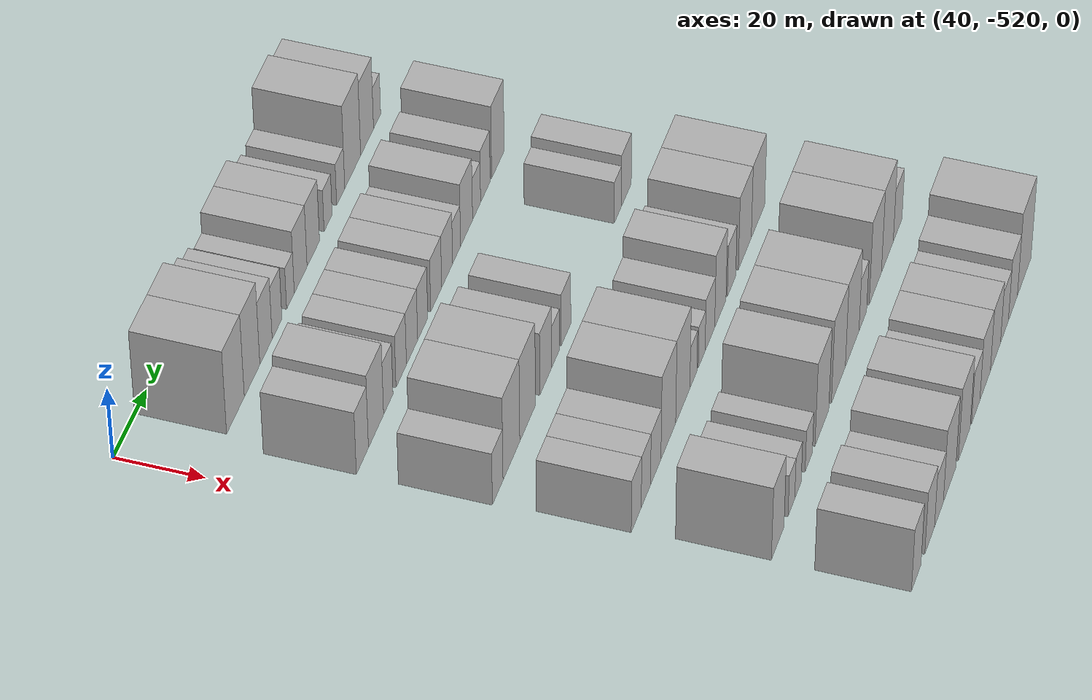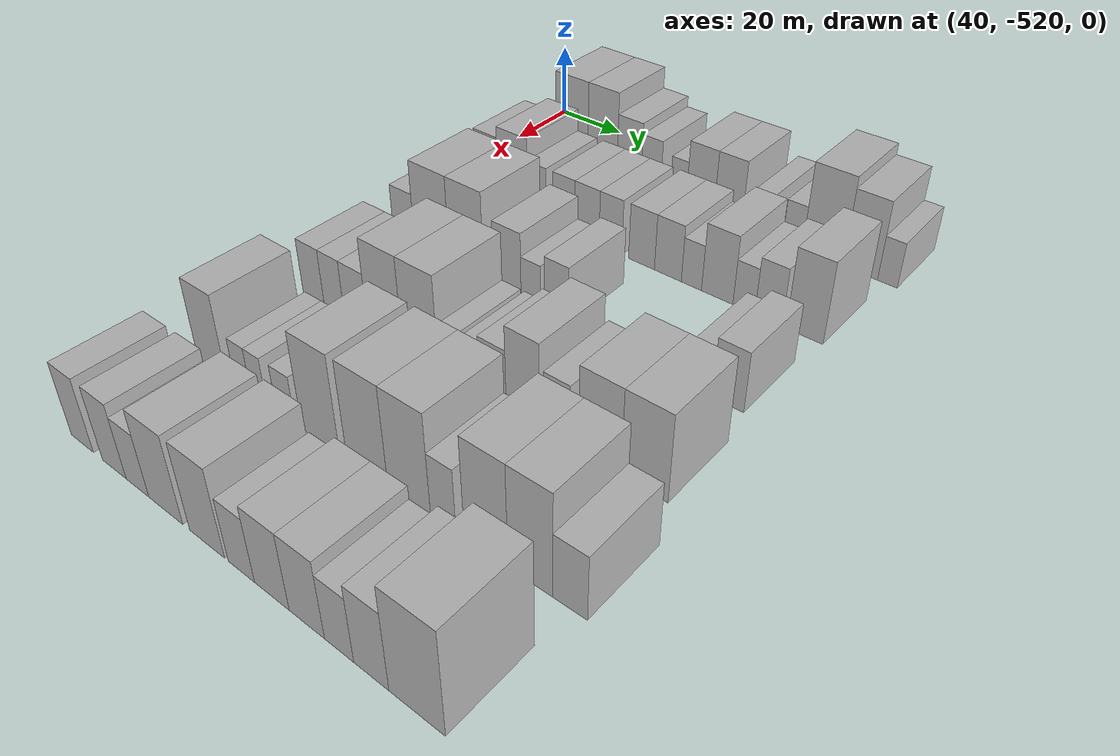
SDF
<sdf version="1.6">
 <world name="default">
  <model name="building_1">
   <static>1</static>
   <pose>50.0000 -501.5181 0 0.000000 0.000000 0.000000</pose>
   <link name="link">
    <pose>0 0 12.00 0 0 0</pose>
    <collision name="collision"><geometry><box><size>20.0000 10.9638 24.0000</size></box></geometry></collision>
    <visual name="visual">
     <cast_shadows>0</cast_shadows>
     <geometry><box><size>20.0000 10.9638 24.0000</size></box></geometry>
     <material>
      <script>
       <uri>model://HANNAS_wall/materials/scripts</uri>
       <uri>model://HANNAS_wall/materials/textures</uri>
       <name>vrc/HANNAS_wall</name>
      </script>
     </material>
    </visual>
   </link>
  </model>
  <model name="building_2">
   <static>1</static>
   <pose>50.0000 -491.1854 0 0.000000 0.000000 0.000000</pose>
   <link name="link">
    <pose>0 0 12.00 0 0 0</pose>
    <collision name="collision"><geometry><box><size>20.0000 9.7015 24.0000</size></box></geometry></collision>
    <visual name="visual">
     <cast_shadows>0</cast_shadows>
     <geometry><box><size>20.0000 9.7015 24.0000</size></box></geometry>
     <material>
      <script>
       <uri>model://HANNAS_wall/materials/scripts</uri>
       <uri>model://HANNAS_wall/materials/textures</uri>
       <name>vrc/HANNAS_wall</name>
      </script>
     </material>
    </visual>
   </link>
  </model>
  <model name="building_3">
   <static>1</static>
   <pose>50.0000 -482.4404 0 0.000000 0.000000 0.000000</pose>
   <link name="link">
    <pose>0 0 9.00 0 0 0</pose>
    <collision name="collision"><geometry><box><size>20.0000 7.7884 18.0000</size></box></geometry></collision>
    <visual name="visual">
     <cast_shadows>0</cast_shadows>
     <geometry><box><size>20.0000 7.7884 18.0000</size></box></geometry>
     <material>
      <script>
       <uri>model://HANNAS_wall/materials/scripts</uri>
       <uri>model://HANNAS_wall/materials/textures</uri>
       <name>vrc/HANNAS_wall</name>
      </script>
     </material>
    </visual>
   </link>
  </model>
  <model name="building_4">
   <static>1</static>
   <pose>50.0000 -475.4470 0 0.000000 0.000000 0.000000</pose>
   <link name="link">
    <pose>0 0 7.50 0 0 0</pose>
    <collision name="collision"><geometry><box><size>20.0000 6.1985 15.0000</size></box></geometry></collision>
    <visual name="visual">
     <cast_shadows>0</cast_shadows>
     <geometry><box><size>20.0000 6.1985 15.0000</size></box></geometry>
     <material>
      <script>
       <uri>model://HANNAS_wall/materials/scripts</uri>
       <uri>model://HANNAS_wall/materials/textures</uri>
       <name>vrc/HANNAS_wall</name>
      </script>
     </material>
    </visual>
   </link>
  </model>
  <model name="building_5">
   <static>1</static>
   <pose>50.0000 -466.8957 0 0.000000 0.000000 0.000000</pose>
   <link name="link">
    <pose>0 0 6.00 0 0 0</pose>
    <collision name="collision"><geometry><box><size>20.0000 4.9040 12.0000</size></box></geometry></collision>
    <visual name="visual">
     <cast_shadows>0</cast_shadows>
     <geometry><box><size>20.0000 4.9040 12.0000</size></box></geometry>
     <material>
      <script>
       <uri>model://HANNAS_wall/materials/scripts</uri>
       <uri>model://HANNAS_wall/materials/textures</uri>
       <name>vrc/HANNAS_wall</name>
      </script>
     </material>
    </visual>
   </link>
  </model>
  <model name="building_6">
   <static>1</static>
   <pose>50.0000 -460.3162 0 0.000000 0.000000 0.000000</pose>
   <link name="link">
    <pose>0 0 9.00 0 0 0</pose>
    <collision name="collision"><geometry><box><size>20.0000 8.2551 18.0000</size></box></geometry></collision>
    <visual name="visual">
     <cast_shadows>0</cast_shadows>
     <geometry><box><size>20.0000 8.2551 18.0000</size></box></geometry>
     <material>
      <script>
       <uri>model://HANNAS_wall/materials/scripts</uri>
       <uri>model://HANNAS_wall/materials/textures</uri>
       <name>vrc/HANNAS_wall</name>
      </script>
     </material>
    </visual>
   </link>
  </model>
  <model name="building_7">
   <static>1</static>
   <pose>50.0000 -452.1298 0 0.000000 0.000000 0.000000</pose>
   <link name="link">
    <pose>0 0 9.00 0 0 0</pose>
    <collision name="collision"><geometry><box><size>20.0000 8.1179 18.0000</size></box></geometry></collision>
    <visual name="visual">
     <cast_shadows>0</cast_shadows>
     <geometry><box><size>20.0000 8.1179 18.0000</size></box></geometry>
     <material>
      <script>
       <uri>model://HANNAS_wall/materials/scripts</uri>
       <uri>model://HANNAS_wall/materials/textures</uri>
       <name>vrc/HANNAS_wall</name>
      </script>
     </material>
    </visual>
   </link>
  </model>
  <model name="building_8">
   <static>1</static>
   <pose>50.0000 -442.4199 0 0.000000 0.000000 0.000000</pose>
   <link name="link">
    <pose>0 0 6.00 0 0 0</pose>
    <collision name="collision"><geometry><box><size>20.0000 5.3018 12.0000</size></box></geometry></collision>
    <visual name="visual">
     <cast_shadows>0</cast_shadows>
     <geometry><box><size>20.0000 5.3018 12.0000</size></box></geometry>
     <material>
      <script>
       <uri>model://HANNAS_wall/materials/scripts</uri>
       <uri>model://HANNAS_wall/materials/textures</uri>
       <name>vrc/HANNAS_wall</name>
      </script>
     </material>
    </visual>
   </link>
  </model>
  <model name="building_9">
   <static>1</static>
   <pose>50.0000 -434.0803 0 0.000000 0.000000 0.000000</pose>
   <link name="link">
    <pose>0 0 6.00 0 0 0</pose>
    <collision name="collision"><geometry><box><size>20.0000 5.3775 12.0000</size></box></geometry></collision>
    <visual name="visual">
     <cast_shadows>0</cast_shadows>
     <geometry><box><size>20.0000 5.3775 12.0000</size></box></geometry>
     <material>
      <script>
       <uri>model://HANNAS_wall/materials/scripts</uri>
       <uri>model://HANNAS_wall/materials/textures</uri>
       <name>vrc/HANNAS_wall</name>
      </script>
     </material>
    </visual>
   </link>
  </model>
  <model name="building_10">
   <static>1</static>
   <pose>50.0000 -426.0683 0 0.000000 0.000000 0.000000</pose>
   <link name="link">
    <pose>0 0 12.00 0 0 0</pose>
    <collision name="collision"><geometry><box><size>20.0000 10.6464 24.0000</size></box></geometry></collision>
    <visual name="visual">
     <cast_shadows>0</cast_shadows>
     <geometry><box><size>20.0000 10.6464 24.0000</size></box></geometry>
     <material>
      <script>
       <uri>model://HANNAS_wall/materials/scripts</uri>
       <uri>model://HANNAS_wall/materials/textures</uri>
       <name>vrc/HANNAS_wall</name>
      </script>
     </material>
    </visual>
   </link>
  </model>
  <model name="building_11">
   <static>1</static>
   <pose>50.0000 -416.3842 0 0.000000 0.000000 0.000000</pose>
   <link name="link">
    <pose>0 0 10.50 0 0 0</pose>
    <collision name="collision"><geometry><box><size>20.0000 8.7219 21.0000</size></box></geometry></collision>
    <visual name="visual">
     <cast_shadows>0</cast_shadows>
     <geometry><box><size>20.0000 8.7219 21.0000</size></box></geometry>
     <material>
      <script>
       <uri>model://HANNAS_wall/materials/scripts</uri>
       <uri>model://HANNAS_wall/materials/textures</uri>
       <name>vrc/HANNAS_wall</name>
      </script>
     </material>
    </visual>
   </link>
  </model>
  <model name="building_12">
   <static>1</static>
   <pose>50.0000 -409.5972 0 0.000000 0.000000 0.000000</pose>
   <link name="link">
    <pose>0 0 6.00 0 0 0</pose>
    <collision name="collision"><geometry><box><size>20.0000 4.8521 12.0000</size></box></geometry></collision>
    <visual name="visual">
     <cast_shadows>0</cast_shadows>
     <geometry><box><size>20.0000 4.8521 12.0000</size></box></geometry>
     <material>
      <script>
       <uri>model://HANNAS_wall/materials/scripts</uri>
       <uri>model://HANNAS_wall/materials/textures</uri>
       <name>vrc/HANNAS_wall</name>
      </script>
     </material>
    </visual>
   </link>
  </model>
  <model name="building_117">
   <static>1</static>
   <pose>79.0000 -506.1214 0 0.000000 0.000000 0.000000</pose>
   <link name="link">
    <pose>0 0 9.00 0 0 0</pose>
    <collision name="collision"><geometry><box><size>20.0000 7.7572 18.0000</size></box></geometry></collision>
    <visual name="visual">
     <cast_shadows>0</cast_shadows>
     <geometry><box><size>20.0000 7.7572 18.0000</size></box></geometry>
     <material>
      <script>
       <uri>model://HANNAS_wall/materials/scripts</uri>
       <uri>model://HANNAS_wall/materials/textures</uri>
       <name>vrc/HANNAS_wall</name>
      </script>
     </material>
    </visual>
   </link>
  </model>
  <model name="building_118">
   <static>1</static>
   <pose>79.0000 -497.3408 0 0.000000 0.000000 0.000000</pose>
   <link name="link">
    <pose>0 0 10.50 0 0 0</pose>
    <collision name="collision"><geometry><box><size>20.0000 9.8040 21.0000</size></box></geometry></collision>
    <visual name="visual">
     <cast_shadows>0</cast_shadows>
     <geometry><box><size>20.0000 9.8040 21.0000</size></box></geometry>
     <material>
      <script>
       <uri>model://HANNAS_wall/materials/scripts</uri>
       <uri>model://HANNAS_wall/materials/textures</uri>
       <name>vrc/HANNAS_wall</name>
      </script>
     </material>
    </visual>
   </link>
  </model>
  <model name="building_119">
   <static>1</static>
   <pose>79.0000 -489.3782 0 0.000000 0.000000 0.000000</pose>
   <link name="link">
    <pose>0 0 7.50 0 0 0</pose>
    <collision name="collision"><geometry><box><size>20.0000 6.1212 15.0000</size></box></geometry></collision>
    <visual name="visual">
     <cast_shadows>0</cast_shadows>
     <geometry><box><size>20.0000 6.1212 15.0000</size></box></geometry>
     <material>
      <script>
       <uri>model://HANNAS_wall/materials/scripts</uri>
       <uri>model://HANNAS_wall/materials/textures</uri>
       <name>vrc/HANNAS_wall</name>
      </script>
     </material>
    </visual>
   </link>
  </model>
  <model name="building_120">
   <static>1</static>
   <pose>79.0000 -480.8714 0 0.000000 0.000000 0.000000</pose>
   <link name="link">
    <pose>0 0 7.50 0 0 0</pose>
    <collision name="collision"><geometry><box><size>20.0000 6.8924 15.0000</size></box></geometry></collision>
    <visual name="visual">
     <cast_shadows>0</cast_shadows>
     <geometry><box><size>20.0000 6.8924 15.0000</size></box></geometry>
     <material>
      <script>
       <uri>model://HANNAS_wall/materials/scripts</uri>
       <uri>model://HANNAS_wall/materials/textures</uri>
       <name>vrc/HANNAS_wall</name>
      </script>
     </material>
    </visual>
   </link>
  </model>
  <model name="building_121">
   <static>1</static>
   <pose>79.0000 -473.6947 0 0.000000 0.000000 0.000000</pose>
   <link name="link">
    <pose>0 0 7.50 0 0 0</pose>
    <collision name="collision"><geometry><box><size>20.0000 7.4610 15.0000</size></box></geometry></collision>
    <visual name="visual">
     <cast_shadows>0</cast_shadows>
     <geometry><box><size>20.0000 7.4610 15.0000</size></box></geometry>
     <material>
      <script>
       <uri>model://HANNAS_wall/materials/scripts</uri>
       <uri>model://HANNAS_wall/materials/textures</uri>
       <name>vrc/HANNAS_wall</name>
      </script>
     </material>
    </visual>
   </link>
  </model>
  <model name="building_122">
   <static>1</static>
   <pose>79.0000 -466.5847 0 0.000000 0.000000 0.000000</pose>
   <link name="link">
    <pose>0 0 7.50 0 0 0</pose>
    <collision name="collision"><geometry><box><size>20.0000 6.7588 15.0000</size></box></geometry></collision>
    <visual name="visual">
     <cast_shadows>0</cast_shadows>
     <geometry><box><size>20.0000 6.7588 15.0000</size></box></geometry>
     <material>
      <script>
       <uri>model://HANNAS_wall/materials/scripts</uri>
       <uri>model://HANNAS_wall/materials/textures</uri>
       <name>vrc/HANNAS_wall</name>
      </script>
     </material>
    </visual>
   </link>
  </model>
  <model name="building_123">
   <static>1</static>
   <pose>79.0000 -457.5000 0 0.000000 0.000000 0.000000</pose>
   <link name="link">
    <pose>0 0 7.50 0 0 0</pose>
    <collision name="collision"><geometry><box><size>20.0000 7.4106 15.0000</size></box></geometry></collision>
    <visual name="visual">
     <cast_shadows>0</cast_shadows>
     <geometry><box><size>20.0000 7.4106 15.0000</size></box></geometry>
     <material>
      <script>
       <uri>model://HANNAS_wall/materials/scripts</uri>
       <uri>model://HANNAS_wall/materials/textures</uri>
       <name>vrc/HANNAS_wall</name>
      </script>
     </material>
    </visual>
   </link>
  </model>
  <model name="building_124">
   <static>1</static>
   <pose>79.0000 -450.0586 0 0.000000 0.000000 0.000000</pose>
   <link name="link">
    <pose>0 0 7.50 0 0 0</pose>
    <collision name="collision"><geometry><box><size>20.0000 7.4722 15.0000</size></box></geometry></collision>
    <visual name="visual">
     <cast_shadows>0</cast_shadows>
     <geometry><box><size>20.0000 7.4722 15.0000</size></box></geometry>
     <material>
      <script>
       <uri>model://HANNAS_wall/materials/scripts</uri>
       <uri>model://HANNAS_wall/materials/textures</uri>
       <name>vrc/HANNAS_wall</name>
      </script>
     </material>
    </visual>
   </link>
  </model>
  <model name="building_125">
   <static>1</static>
   <pose>79.0000 -443.5903 0 0.000000 0.000000 0.000000</pose>
   <link name="link">
    <pose>0 0 6.00 0 0 0</pose>
    <collision name="collision"><geometry><box><size>20.0000 5.4645 12.0000</size></box></geometry></collision>
    <visual name="visual">
     <cast_shadows>0</cast_shadows>
     <geometry><box><size>20.0000 5.4645 12.0000</size></box></geometry>
     <material>
      <script>
       <uri>model://HANNAS_wall/materials/scripts</uri>
       <uri>model://HANNAS_wall/materials/textures</uri>
       <name>vrc/HANNAS_wall</name>
      </script>
     </material>
    </visual>
   </link>
  </model>
  <model name="building_126">
   <static>1</static>
   <pose>79.0000 -436.7239 0 0.000000 0.000000 0.000000</pose>
   <link name="link">
    <pose>0 0 9.00 0 0 0</pose>
    <collision name="collision"><geometry><box><size>20.0000 8.2682 18.0000</size></box></geometry></collision>
    <visual name="visual">
     <cast_shadows>0</cast_shadows>
     <geometry><box><size>20.0000 8.2682 18.0000</size></box></geometry>
     <material>
      <script>
       <uri>model://HANNAS_wall/materials/scripts</uri>
       <uri>model://HANNAS_wall/materials/textures</uri>
       <name>vrc/HANNAS_wall</name>
      </script>
     </material>
    </visual>
   </link>
  </model>
  <model name="building_127">
   <static>1</static>
   <pose>79.0000 -429.8005 0 0.000000 0.000000 0.000000</pose>
   <link name="link">
    <pose>0 0 6.00 0 0 0</pose>
    <collision name="collision"><geometry><box><size>20.0000 5.5786 12.0000</size></box></geometry></collision>
    <visual name="visual">
     <cast_shadows>0</cast_shadows>
     <geometry><box><size>20.0000 5.5786 12.0000</size></box></geometry>
     <material>
      <script>
       <uri>model://HANNAS_wall/materials/scripts</uri>
       <uri>model://HANNAS_wall/materials/textures</uri>
       <name>vrc/HANNAS_wall</name>
      </script>
     </material>
    </visual>
   </link>
  </model>
  <model name="building_128">
   <static>1</static>
   <pose>79.0000 -423.6355 0 0.000000 0.000000 0.000000</pose>
   <link name="link">
    <pose>0 0 7.50 0 0 0</pose>
    <collision name="collision"><geometry><box><size>20.0000 6.7516 15.0000</size></box></geometry></collision>
    <visual name="visual">
     <cast_shadows>0</cast_shadows>
     <geometry><box><size>20.0000 6.7516 15.0000</size></box></geometry>
     <material>
      <script>
       <uri>model://HANNAS_wall/materials/scripts</uri>
       <uri>model://HANNAS_wall/materials/textures</uri>
       <name>vrc/HANNAS_wall</name>
      </script>
     </material>
    </visual>
   </link>
  </model>
  <model name="building_129">
   <static>1</static>
   <pose>79.0000 -414.8125 0 0.000000 0.000000 0.000000</pose>
   <link name="link">
    <pose>0 0 10.50 0 0 0</pose>
    <collision name="collision"><geometry><box><size>20.0000 8.8943 21.0000</size></box></geometry></collision>
    <visual name="visual">
     <cast_shadows>0</cast_shadows>
     <geometry><box><size>20.0000 8.8943 21.0000</size></box></geometry>
     <material>
      <script>
       <uri>model://HANNAS_wall/materials/scripts</uri>
       <uri>model://HANNAS_wall/materials/textures</uri>
       <name>vrc/HANNAS_wall</name>
      </script>
     </material>
    </visual>
   </link>
  </model>
  <model name="building_230">
   <static>1</static>
   <pose>108.0000 -506.4364 0 0.000000 0.000000 0.000000</pose>
   <link name="link">
    <pose>0 0 7.50 0 0 0</pose>
    <collision name="collision"><geometry><box><size>20.0000 7.1273 15.0000</size></box></geometry></collision>
    <visual name="visual">
     <cast_shadows>0</cast_shadows>
     <geometry><box><size>20.0000 7.1273 15.0000</size></box></geometry>
     <material>
      <script>
       <uri>model://HANNAS_wall/materials/scripts</uri>
       <uri>model://HANNAS_wall/materials/textures</uri>
       <name>vrc/HANNAS_wall</name>
      </script>
     </material>
    </visual>
   </link>
  </model>
  <model name="building_231">
   <static>1</static>
   <pose>108.0000 -497.1877 0 0.000000 0.000000 0.000000</pose>
   <link name="link">
    <pose>0 0 12.00 0 0 0</pose>
    <collision name="collision"><geometry><box><size>20.0000 11.3700 24.0000</size></box></geometry></collision>
    <visual name="visual">
     <cast_shadows>0</cast_shadows>
     <geometry><box><size>20.0000 11.3700 24.0000</size></box></geometry>
     <material>
      <script>
       <uri>model://HANNAS_wall/materials/scripts</uri>
       <uri>model://HANNAS_wall/materials/textures</uri>
       <name>vrc/HANNAS_wall</name>
      </script>
     </material>
    </visual>
   </link>
  </model>
  <model name="building_232">
   <static>1</static>
   <pose>108.0000 -486.1249 0 0.000000 0.000000 0.000000</pose>
   <link name="link">
    <pose>0 0 12.00 0 0 0</pose>
    <collision name="collision"><geometry><box><size>20.0000 10.7556 24.0000</size></box></geometry></collision>
    <visual name="visual">
     <cast_shadows>0</cast_shadows>
     <geometry><box><size>20.0000 10.7556 24.0000</size></box></geometry>
     <material>
      <script>
       <uri>model://HANNAS_wall/materials/scripts</uri>
       <uri>model://HANNAS_wall/materials/textures</uri>
       <name>vrc/HANNAS_wall</name>
      </script>
     </material>
    </visual>
   </link>
  </model>
  <model name="building_233">
   <static>1</static>
   <pose>108.0000 -473.6364 0 0.000000 0.000000 0.000000</pose>
   <link name="link">
    <pose>0 0 9.00 0 0 0</pose>
    <collision name="collision"><geometry><box><size>20.0000 8.2215 18.0000</size></box></geometry></collision>
    <visual name="visual">
     <cast_shadows>0</cast_shadows>
     <geometry><box><size>20.0000 8.2215 18.0000</size></box></geometry>
     <material>
      <script>
       <uri>model://HANNAS_wall/materials/scripts</uri>
       <uri>model://HANNAS_wall/materials/textures</uri>
       <name>vrc/HANNAS_wall</name>
      </script>
     </material>
    </visual>
   </link>
  </model>
  <model name="building_234">
   <static>1</static>
   <pose>108.0000 -466.7179 0 0.000000 0.000000 0.000000</pose>
   <link name="link">
    <pose>0 0 6.00 0 0 0</pose>
    <collision name="collision"><geometry><box><size>20.0000 5.6155 12.0000</size></box></geometry></collision>
    <visual name="visual">
     <cast_shadows>0</cast_shadows>
     <geometry><box><size>20.0000 5.6155 12.0000</size></box></geometry>
     <material>
      <script>
       <uri>model://HANNAS_wall/materials/scripts</uri>
       <uri>model://HANNAS_wall/materials/textures</uri>
       <name>vrc/HANNAS_wall</name>
      </script>
     </material>
    </visual>
   </link>
  </model>
  <model name="building_235">
   <static>1</static>
   <pose>108.0000 -459.4796 0 0.000000 0.000000 0.000000</pose>
   <link name="link">
    <pose>0 0 7.50 0 0 0</pose>
    <collision name="collision"><geometry><box><size>20.0000 6.8610 15.0000</size></box></geometry></collision>
    <visual name="visual">
     <cast_shadows>0</cast_shadows>
     <geometry><box><size>20.0000 6.8610 15.0000</size></box></geometry>
     <material>
      <script>
       <uri>model://HANNAS_wall/materials/scripts</uri>
       <uri>model://HANNAS_wall/materials/textures</uri>
       <name>vrc/HANNAS_wall</name>
      </script>
     </material>
    </visual>
   </link>
  </model>
  <model name="building_236">
   <static>1</static>
   <pose>108.0000 -422.0795 0 0.000000 0.000000 0.000000</pose>
   <link name="link">
    <pose>0 0 6.00 0 0 0</pose>
    <collision name="collision"><geometry><box><size>20.0000 5.3131 12.0000</size></box></geometry></collision>
    <visual name="visual">
     <cast_shadows>0</cast_shadows>
     <geometry><box><size>20.0000 5.3131 12.0000</size></box></geometry>
     <material>
      <script>
       <uri>model://HANNAS_wall/materials/scripts</uri>
       <uri>model://HANNAS_wall/materials/textures</uri>
       <name>vrc/HANNAS_wall</name>
      </script>
     </material>
    </visual>
   </link>
  </model>
  <model name="building_237">
   <static>1</static>
   <pose>108.0000 -415.7891 0 0.000000 0.000000 0.000000</pose>
   <link name="link">
    <pose>0 0 7.50 0 0 0</pose>
    <collision name="collision"><geometry><box><size>20.0000 7.2677 15.0000</size></box></geometry></collision>
    <visual name="visual">
     <cast_shadows>0</cast_shadows>
     <geometry><box><size>20.0000 7.2677 15.0000</size></box></geometry>
     <material>
      <script>
       <uri>model://HANNAS_wall/materials/scripts</uri>
       <uri>model://HANNAS_wall/materials/textures</uri>
       <name>vrc/HANNAS_wall</name>
      </script>
     </material>
    </visual>
   </link>
  </model>
  <model name="building_333">
   <static>1</static>
   <pose>137.0000 -505.4777 0 0.000000 0.000000 0.000000</pose>
   <link name="link">
    <pose>0 0 7.50 0 0 0</pose>
    <collision name="collision"><geometry><box><size>20.0000 7.0445 15.0000</size></box></geometry></collision>
    <visual name="visual">
     <cast_shadows>0</cast_shadows>
     <geometry><box><size>20.0000 7.0445 15.0000</size></box></geometry>
     <material>
      <script>
       <uri>model://HANNAS_wall/materials/scripts</uri>
       <uri>model://HANNAS_wall/materials/textures</uri>
       <name>vrc/HANNAS_wall</name>
      </script>
     </material>
    </visual>
   </link>
  </model>
  <model name="building_334">
   <static>1</static>
   <pose>137.0000 -498.6536 0 0.000000 0.000000 0.000000</pose>
   <link name="link">
    <pose>0 0 7.50 0 0 0</pose>
    <collision name="collision"><geometry><box><size>20.0000 6.6038 15.0000</size></box></geometry></collision>
    <visual name="visual">
     <cast_shadows>0</cast_shadows>
     <geometry><box><size>20.0000 6.6038 15.0000</size></box></geometry>
     <material>
      <script>
       <uri>model://HANNAS_wall/materials/scripts</uri>
       <uri>model://HANNAS_wall/materials/textures</uri>
       <name>vrc/HANNAS_wall</name>
      </script>
     </material>
    </visual>
   </link>
  </model>
  <model name="building_335">
   <static>1</static>
   <pose>137.0000 -491.6360 0 0.000000 0.000000 0.000000</pose>
   <link name="link">
    <pose>0 0 7.50 0 0 0</pose>
    <collision name="collision"><geometry><box><size>20.0000 7.4313 15.0000</size></box></geometry></collision>
    <visual name="visual">
     <cast_shadows>0</cast_shadows>
     <geometry><box><size>20.0000 7.4313 15.0000</size></box></geometry>
     <material>
      <script>
       <uri>model://HANNAS_wall/materials/scripts</uri>
       <uri>model://HANNAS_wall/materials/textures</uri>
       <name>vrc/HANNAS_wall</name>
      </script>
     </material>
    </visual>
   </link>
  </model>
  <model name="building_336">
   <static>1</static>
   <pose>137.0000 -482.5918 0 0.000000 0.000000 0.000000</pose>
   <link name="link">
    <pose>0 0 12.00 0 0 0</pose>
    <collision name="collision"><geometry><box><size>20.0000 10.6572 24.0000</size></box></geometry></collision>
    <visual name="visual">
     <cast_shadows>0</cast_shadows>
     <geometry><box><size>20.0000 10.6572 24.0000</size></box></geometry>
     <material>
      <script>
       <uri>model://HANNAS_wall/materials/scripts</uri>
       <uri>model://HANNAS_wall/materials/textures</uri>
       <name>vrc/HANNAS_wall</name>
      </script>
     </material>
    </visual>
   </link>
  </model>
  <model name="building_337">
   <static>1</static>
   <pose>137.0000 -472.0871 0 0.000000 0.000000 0.000000</pose>
   <link name="link">
    <pose>0 0 12.00 0 0 0</pose>
    <collision name="collision"><geometry><box><size>20.0000 10.3522 24.0000</size></box></geometry></collision>
    <visual name="visual">
     <cast_shadows>0</cast_shadows>
     <geometry><box><size>20.0000 10.3522 24.0000</size></box></geometry>
     <material>
      <script>
       <uri>model://HANNAS_wall/materials/scripts</uri>
       <uri>model://HANNAS_wall/materials/textures</uri>
       <name>vrc/HANNAS_wall</name>
      </script>
     </material>
    </visual>
   </link>
  </model>
  <model name="building_338">
   <static>1</static>
   <pose>137.0000 -464.2966 0 0.000000 0.000000 0.000000</pose>
   <link name="link">
    <pose>0 0 6.00 0 0 0</pose>
    <collision name="collision"><geometry><box><size>20.0000 5.2288 12.0000</size></box></geometry></collision>
    <visual name="visual">
     <cast_shadows>0</cast_shadows>
     <geometry><box><size>20.0000 5.2288 12.0000</size></box></geometry>
     <material>
      <script>
       <uri>model://HANNAS_wall/materials/scripts</uri>
       <uri>model://HANNAS_wall/materials/textures</uri>
       <name>vrc/HANNAS_wall</name>
      </script>
     </material>
    </visual>
   </link>
  </model>
  <model name="building_339">
   <static>1</static>
   <pose>137.0000 -458.1540 0 0.000000 0.000000 0.000000</pose>
   <link name="link">
    <pose>0 0 6.00 0 0 0</pose>
    <collision name="collision"><geometry><box><size>20.0000 5.0564 12.0000</size></box></geometry></collision>
    <visual name="visual">
     <cast_shadows>0</cast_shadows>
     <geometry><box><size>20.0000 5.0564 12.0000</size></box></geometry>
     <material>
      <script>
       <uri>model://HANNAS_wall/materials/scripts</uri>
       <uri>model://HANNAS_wall/materials/textures</uri>
       <name>vrc/HANNAS_wall</name>
      </script>
     </material>
    </visual>
   </link>
  </model>
  <model name="building_340">
   <static>1</static>
   <pose>137.0000 -452.0350 0 0.000000 0.000000 0.000000</pose>
   <link name="link">
    <pose>0 0 7.50 0 0 0</pose>
    <collision name="collision"><geometry><box><size>20.0000 7.1815 15.0000</size></box></geometry></collision>
    <visual name="visual">
     <cast_shadows>0</cast_shadows>
     <geometry><box><size>20.0000 7.1815 15.0000</size></box></geometry>
     <material>
      <script>
       <uri>model://HANNAS_wall/materials/scripts</uri>
       <uri>model://HANNAS_wall/materials/textures</uri>
       <name>vrc/HANNAS_wall</name>
      </script>
     </material>
    </visual>
   </link>
  </model>
  <model name="building_341">
   <static>1</static>
   <pose>137.0000 -444.1904 0 0.000000 0.000000 0.000000</pose>
   <link name="link">
    <pose>0 0 10.50 0 0 0</pose>
    <collision name="collision"><geometry><box><size>20.0000 8.5078 21.0000</size></box></geometry></collision>
    <visual name="visual">
     <cast_shadows>0</cast_shadows>
     <geometry><box><size>20.0000 8.5078 21.0000</size></box></geometry>
     <material>
      <script>
       <uri>model://HANNAS_wall/materials/scripts</uri>
       <uri>model://HANNAS_wall/materials/textures</uri>
       <name>vrc/HANNAS_wall</name>
      </script>
     </material>
    </visual>
   </link>
  </model>
  <model name="building_342">
   <static>1</static>
   <pose>137.0000 -435.7156 0 0.000000 0.000000 0.000000</pose>
   <link name="link">
    <pose>0 0 7.50 0 0 0</pose>
    <collision name="collision"><geometry><box><size>20.0000 6.4418 15.0000</size></box></geometry></collision>
    <visual name="visual">
     <cast_shadows>0</cast_shadows>
     <geometry><box><size>20.0000 6.4418 15.0000</size></box></geometry>
     <material>
      <script>
       <uri>model://HANNAS_wall/materials/scripts</uri>
       <uri>model://HANNAS_wall/materials/textures</uri>
       <name>vrc/HANNAS_wall</name>
      </script>
     </material>
    </visual>
   </link>
  </model>
  <model name="building_343">
   <static>1</static>
   <pose>137.0000 -425.5197 0 0.000000 0.000000 0.000000</pose>
   <link name="link">
    <pose>0 0 10.50 0 0 0</pose>
    <collision name="collision"><geometry><box><size>20.0000 9.9501 21.0000</size></box></geometry></collision>
    <visual name="visual">
     <cast_shadows>0</cast_shadows>
     <geometry><box><size>20.0000 9.9501 21.0000</size></box></geometry>
     <material>
      <script>
       <uri>model://HANNAS_wall/materials/scripts</uri>
       <uri>model://HANNAS_wall/materials/textures</uri>
       <name>vrc/HANNAS_wall</name>
      </script>
     </material>
    </visual>
   </link>
  </model>
  <model name="building_344">
   <static>1</static>
   <pose>137.0000 -415.3293 0 0.000000 0.000000 0.000000</pose>
   <link name="link">
    <pose>0 0 10.50 0 0 0</pose>
    <collision name="collision"><geometry><box><size>20.0000 10.4305 21.0000</size></box></geometry></collision>
    <visual name="visual">
     <cast_shadows>0</cast_shadows>
     <geometry><box><size>20.0000 10.4305 21.0000</size></box></geometry>
     <material>
      <script>
       <uri>model://HANNAS_wall/materials/scripts</uri>
       <uri>model://HANNAS_wall/materials/textures</uri>
       <name>vrc/HANNAS_wall</name>
      </script>
     </material>
    </visual>
   </link>
  </model>
  <model name="building_446">
   <static>1</static>
   <pose>166.0000 -503.2920 0 0.000000 0.000000 0.000000</pose>
   <link name="link">
    <pose>0 0 10.50 0 0 0</pose>
    <collision name="collision"><geometry><box><size>20.0000 9.4159 21.0000</size></box></geometry></collision>
    <visual name="visual">
     <cast_shadows>0</cast_shadows>
     <geometry><box><size>20.0000 9.4159 21.0000</size></box></geometry>
     <material>
      <script>
       <uri>model://HANNAS_wall/materials/scripts</uri>
       <uri>model://HANNAS_wall/materials/textures</uri>
       <name>vrc/HANNAS_wall</name>
      </script>
     </material>
    </visual>
   </link>
  </model>
  <model name="building_447">
   <static>1</static>
   <pose>166.0000 -493.0701 0 0.000000 0.000000 0.000000</pose>
   <link name="link">
    <pose>0 0 6.00 0 0 0</pose>
    <collision name="collision"><geometry><box><size>20.0000 5.0280 12.0000</size></box></geometry></collision>
    <visual name="visual">
     <cast_shadows>0</cast_shadows>
     <geometry><box><size>20.0000 5.0280 12.0000</size></box></geometry>
     <material>
      <script>
       <uri>model://HANNAS_wall/materials/scripts</uri>
       <uri>model://HANNAS_wall/materials/textures</uri>
       <name>vrc/HANNAS_wall</name>
      </script>
     </material>
    </visual>
   </link>
  </model>
  <model name="building_448">
   <static>1</static>
   <pose>166.0000 -488.1104 0 0.000000 0.000000 0.000000</pose>
   <link name="link">
    <pose>0 0 6.00 0 0 0</pose>
    <collision name="collision"><geometry><box><size>20.0000 4.8913 12.0000</size></box></geometry></collision>
    <visual name="visual">
     <cast_shadows>0</cast_shadows>
     <geometry><box><size>20.0000 4.8913 12.0000</size></box></geometry>
     <material>
      <script>
       <uri>model://HANNAS_wall/materials/scripts</uri>
       <uri>model://HANNAS_wall/materials/textures</uri>
       <name>vrc/HANNAS_wall</name>
      </script>
     </material>
    </visual>
   </link>
  </model>
  <model name="building_449">
   <static>1</static>
   <pose>166.0000 -479.8825 0 0.000000 0.000000 0.000000</pose>
   <link name="link">
    <pose>0 0 6.00 0 0 0</pose>
    <collision name="collision"><geometry><box><size>20.0000 5.5645 12.0000</size></box></geometry></collision>
    <visual name="visual">
     <cast_shadows>0</cast_shadows>
     <geometry><box><size>20.0000 5.5645 12.0000</size></box></geometry>
     <material>
      <script>
       <uri>model://HANNAS_wall/materials/scripts</uri>
       <uri>model://HANNAS_wall/materials/textures</uri>
       <name>vrc/HANNAS_wall</name>
      </script>
     </material>
    </visual>
   </link>
  </model>
  <model name="building_450">
   <static>1</static>
   <pose>166.0000 -469.7672 0 0.000000 0.000000 0.000000</pose>
   <link name="link">
    <pose>0 0 12.00 0 0 0</pose>
    <collision name="collision"><geometry><box><size>20.0000 10.6661 24.0000</size></box></geometry></collision>
    <visual name="visual">
     <cast_shadows>0</cast_shadows>
     <geometry><box><size>20.0000 10.6661 24.0000</size></box></geometry>
     <material>
      <script>
       <uri>model://HANNAS_wall/materials/scripts</uri>
       <uri>model://HANNAS_wall/materials/textures</uri>
       <name>vrc/HANNAS_wall</name>
      </script>
     </material>
    </visual>
   </link>
  </model>
  <model name="building_451">
   <static>1</static>
   <pose>166.0000 -456.9466 0 0.000000 0.000000 0.000000</pose>
   <link name="link">
    <pose>0 0 12.00 0 0 0</pose>
    <collision name="collision"><geometry><box><size>20.0000 10.9753 24.0000</size></box></geometry></collision>
    <visual name="visual">
     <cast_shadows>0</cast_shadows>
     <geometry><box><size>20.0000 10.9753 24.0000</size></box></geometry>
     <material>
      <script>
       <uri>model://HANNAS_wall/materials/scripts</uri>
       <uri>model://HANNAS_wall/materials/textures</uri>
       <name>vrc/HANNAS_wall</name>
      </script>
     </material>
    </visual>
   </link>
  </model>
  <model name="building_452">
   <static>1</static>
   <pose>166.0000 -446.0625 0 0.000000 0.000000 0.000000</pose>
   <link name="link">
    <pose>0 0 12.00 0 0 0</pose>
    <collision name="collision"><geometry><box><size>20.0000 10.7927 24.0000</size></box></geometry></collision>
    <visual name="visual">
     <cast_shadows>0</cast_shadows>
     <geometry><box><size>20.0000 10.7927 24.0000</size></box></geometry>
     <material>
      <script>
       <uri>model://HANNAS_wall/materials/scripts</uri>
       <uri>model://HANNAS_wall/materials/textures</uri>
       <name>vrc/HANNAS_wall</name>
      </script>
     </material>
    </visual>
   </link>
  </model>
  <model name="building_453">
   <static>1</static>
   <pose>166.0000 -437.5964 0 0.000000 0.000000 0.000000</pose>
   <link name="link">
    <pose>0 0 7.50 0 0 0</pose>
    <collision name="collision"><geometry><box><size>20.0000 6.1396 15.0000</size></box></geometry></collision>
    <visual name="visual">
     <cast_shadows>0</cast_shadows>
     <geometry><box><size>20.0000 6.1396 15.0000</size></box></geometry>
     <material>
      <script>
       <uri>model://HANNAS_wall/materials/scripts</uri>
       <uri>model://HANNAS_wall/materials/textures</uri>
       <name>vrc/HANNAS_wall</name>
      </script>
     </material>
    </visual>
   </link>
  </model>
  <model name="building_454">
   <static>1</static>
   <pose>166.0000 -427.5416 0 0.000000 0.000000 0.000000</pose>
   <link name="link">
    <pose>0 0 12.00 0 0 0</pose>
    <collision name="collision"><geometry><box><size>20.0000 9.9699 24.0000</size></box></geometry></collision>
    <visual name="visual">
     <cast_shadows>0</cast_shadows>
     <geometry><box><size>20.0000 9.9699 24.0000</size></box></geometry>
     <material>
      <script>
       <uri>model://HANNAS_wall/materials/scripts</uri>
       <uri>model://HANNAS_wall/materials/textures</uri>
       <name>vrc/HANNAS_wall</name>
      </script>
     </material>
    </visual>
   </link>
  </model>
  <model name="building_455">
   <static>1</static>
   <pose>166.0000 -417.7086 0 0.000000 0.000000 0.000000</pose>
   <link name="link">
    <pose>0 0 12.00 0 0 0</pose>
    <collision name="collision"><geometry><box><size>20.0000 9.6961 24.0000</size></box></geometry></collision>
    <visual name="visual">
     <cast_shadows>0</cast_shadows>
     <geometry><box><size>20.0000 9.6961 24.0000</size></box></geometry>
     <material>
      <script>
       <uri>model://HANNAS_wall/materials/scripts</uri>
       <uri>model://HANNAS_wall/materials/textures</uri>
       <name>vrc/HANNAS_wall</name>
      </script>
     </material>
    </visual>
   </link>
  </model>
  <model name="building_456">
   <static>1</static>
   <pose>166.0000 -409.2773 0 0.000000 0.000000 0.000000</pose>
   <link name="link">
    <pose>0 0 7.50 0 0 0</pose>
    <collision name="collision"><geometry><box><size>20.0000 7.1666 15.0000</size></box></geometry></collision>
    <visual name="visual">
     <cast_shadows>0</cast_shadows>
     <geometry><box><size>20.0000 7.1666 15.0000</size></box></geometry>
     <material>
      <script>
       <uri>model://HANNAS_wall/materials/scripts</uri>
       <uri>model://HANNAS_wall/materials/textures</uri>
       <name>vrc/HANNAS_wall</name>
      </script>
     </material>
    </visual>
   </link>
  </model>
  <model name="building_561">
   <static>1</static>
   <pose>195.0000 -504.2344 0 0.000000 0.000000 0.000000</pose>
   <link name="link">
    <pose>0 0 9.00 0 0 0</pose>
    <collision name="collision"><geometry><box><size>20.0000 7.5311 18.0000</size></box></geometry></collision>
    <visual name="visual">
     <cast_shadows>0</cast_shadows>
     <geometry><box><size>20.0000 7.5311 18.0000</size></box></geometry>
     <material>
      <script>
       <uri>model://HANNAS_wall/materials/scripts</uri>
       <uri>model://HANNAS_wall/materials/textures</uri>
       <name>vrc/HANNAS_wall</name>
      </script>
     </material>
    </visual>
   </link>
  </model>
  <model name="building_562">
   <static>1</static>
   <pose>195.0000 -493.6233 0 0.000000 0.000000 0.000000</pose>
   <link name="link">
    <pose>0 0 9.00 0 0 0</pose>
    <collision name="collision"><geometry><box><size>20.0000 7.6912 18.0000</size></box></geometry></collision>
    <visual name="visual">
     <cast_shadows>0</cast_shadows>
     <geometry><box><size>20.0000 7.6912 18.0000</size></box></geometry>
     <material>
      <script>
       <uri>model://HANNAS_wall/materials/scripts</uri>
       <uri>model://HANNAS_wall/materials/textures</uri>
       <name>vrc/HANNAS_wall</name>
      </script>
     </material>
    </visual>
   </link>
  </model>
  <model name="building_563">
   <static>1</static>
   <pose>195.0000 -486.2289 0 0.000000 0.000000 0.000000</pose>
   <link name="link">
    <pose>0 0 7.50 0 0 0</pose>
    <collision name="collision"><geometry><box><size>20.0000 7.0975 15.0000</size></box></geometry></collision>
    <visual name="visual">
     <cast_shadows>0</cast_shadows>
     <geometry><box><size>20.0000 7.0975 15.0000</size></box></geometry>
     <material>
      <script>
       <uri>model://HANNAS_wall/materials/scripts</uri>
       <uri>model://HANNAS_wall/materials/textures</uri>
       <name>vrc/HANNAS_wall</name>
      </script>
     </material>
    </visual>
   </link>
  </model>
  <model name="building_564">
   <static>1</static>
   <pose>195.0000 -477.6144 0 0.000000 0.000000 0.000000</pose>
   <link name="link">
    <pose>0 0 10.50 0 0 0</pose>
    <collision name="collision"><geometry><box><size>20.0000 10.1314 21.0000</size></box></geometry></collision>
    <visual name="visual">
     <cast_shadows>0</cast_shadows>
     <geometry><box><size>20.0000 10.1314 21.0000</size></box></geometry>
     <material>
      <script>
       <uri>model://HANNAS_wall/materials/scripts</uri>
       <uri>model://HANNAS_wall/materials/textures</uri>
       <name>vrc/HANNAS_wall</name>
      </script>
     </material>
    </visual>
   </link>
  </model>
  <model name="building_565">
   <static>1</static>
   <pose>195.0000 -465.6563 0 0.000000 0.000000 0.000000</pose>
   <link name="link">
    <pose>0 0 10.50 0 0 0</pose>
    <collision name="collision"><geometry><box><size>20.0000 9.7849 21.0000</size></box></geometry></collision>
    <visual name="visual">
     <cast_shadows>0</cast_shadows>
     <geometry><box><size>20.0000 9.7849 21.0000</size></box></geometry>
     <material>
      <script>
       <uri>model://HANNAS_wall/materials/scripts</uri>
       <uri>model://HANNAS_wall/materials/textures</uri>
       <name>vrc/HANNAS_wall</name>
      </script>
     </material>
    </visual>
   </link>
  </model>
  <model name="building_566">
   <static>1</static>
   <pose>195.0000 -456.2698 0 0.000000 0.000000 0.000000</pose>
   <link name="link">
    <pose>0 0 7.50 0 0 0</pose>
    <collision name="collision"><geometry><box><size>20.0000 6.9882 15.0000</size></box></geometry></collision>
    <visual name="visual">
     <cast_shadows>0</cast_shadows>
     <geometry><box><size>20.0000 6.9882 15.0000</size></box></geometry>
     <material>
      <script>
       <uri>model://HANNAS_wall/materials/scripts</uri>
       <uri>model://HANNAS_wall/materials/textures</uri>
       <name>vrc/HANNAS_wall</name>
      </script>
     </material>
    </visual>
   </link>
  </model>
  <model name="building_567">
   <static>1</static>
   <pose>195.0000 -448.3708 0 0.000000 0.000000 0.000000</pose>
   <link name="link">
    <pose>0 0 9.00 0 0 0</pose>
    <collision name="collision"><geometry><box><size>20.0000 8.8097 18.0000</size></box></geometry></collision>
    <visual name="visual">
     <cast_shadows>0</cast_shadows>
     <geometry><box><size>20.0000 8.8097 18.0000</size></box></geometry>
     <material>
      <script>
       <uri>model://HANNAS_wall/materials/scripts</uri>
       <uri>model://HANNAS_wall/materials/textures</uri>
       <name>vrc/HANNAS_wall</name>
      </script>
     </material>
    </visual>
   </link>
  </model>
  <model name="building_568">
   <static>1</static>
   <pose>195.0000 -439.6919 0 0.000000 0.000000 0.000000</pose>
   <link name="link">
    <pose>0 0 9.00 0 0 0</pose>
    <collision name="collision"><geometry><box><size>20.0000 8.5481 18.0000</size></box></geometry></collision>
    <visual name="visual">
     <cast_shadows>0</cast_shadows>
     <geometry><box><size>20.0000 8.5481 18.0000</size></box></geometry>
     <material>
      <script>
       <uri>model://HANNAS_wall/materials/scripts</uri>
       <uri>model://HANNAS_wall/materials/textures</uri>
       <name>vrc/HANNAS_wall</name>
      </script>
     </material>
    </visual>
   </link>
  </model>
  <model name="building_569">
   <static>1</static>
   <pose>195.0000 -432.0493 0 0.000000 0.000000 0.000000</pose>
   <link name="link">
    <pose>0 0 7.50 0 0 0</pose>
    <collision name="collision"><geometry><box><size>20.0000 6.7372 15.0000</size></box></geometry></collision>
    <visual name="visual">
     <cast_shadows>0</cast_shadows>
     <geometry><box><size>20.0000 6.7372 15.0000</size></box></geometry>
     <material>
      <script>
       <uri>model://HANNAS_wall/materials/scripts</uri>
       <uri>model://HANNAS_wall/materials/textures</uri>
       <name>vrc/HANNAS_wall</name>
      </script>
     </material>
    </visual>
   </link>
  </model>
  <model name="building_570">
   <static>1</static>
   <pose>195.0000 -424.7972 0 0.000000 0.000000 0.000000</pose>
   <link name="link">
    <pose>0 0 9.00 0 0 0</pose>
    <collision name="collision"><geometry><box><size>20.0000 7.7672 18.0000</size></box></geometry></collision>
    <visual name="visual">
     <cast_shadows>0</cast_shadows>
     <geometry><box><size>20.0000 7.7672 18.0000</size></box></geometry>
     <material>
      <script>
       <uri>model://HANNAS_wall/materials/scripts</uri>
       <uri>model://HANNAS_wall/materials/textures</uri>
       <name>vrc/HANNAS_wall</name>
      </script>
     </material>
    </visual>
   </link>
  </model>
  <model name="building_571">
   <static>1</static>
   <pose>195.0000 -415.0313 0 0.000000 0.000000 0.000000</pose>
   <link name="link">
    <pose>0 0 12.00 0 0 0</pose>
    <collision name="collision"><geometry><box><size>20.0000 11.7645 24.0000</size></box></geometry></collision>
    <visual name="visual">
     <cast_shadows>0</cast_shadows>
     <geometry><box><size>20.0000 11.7645 24.0000</size></box></geometry>
     <material>
      <script>
       <uri>model://HANNAS_wall/materials/scripts</uri>
       <uri>model://HANNAS_wall/materials/textures</uri>
       <name>vrc/HANNAS_wall</name>
      </script>
     </material>
    </visual>
   </link>
  </model>
 </world>
</sdf>
